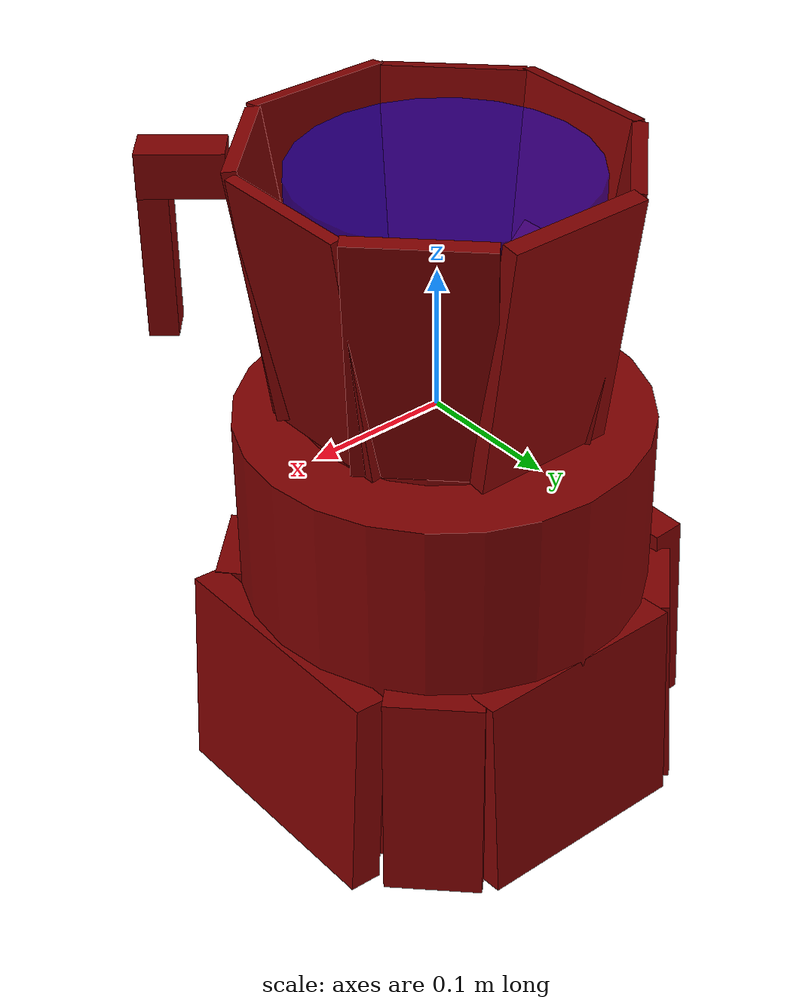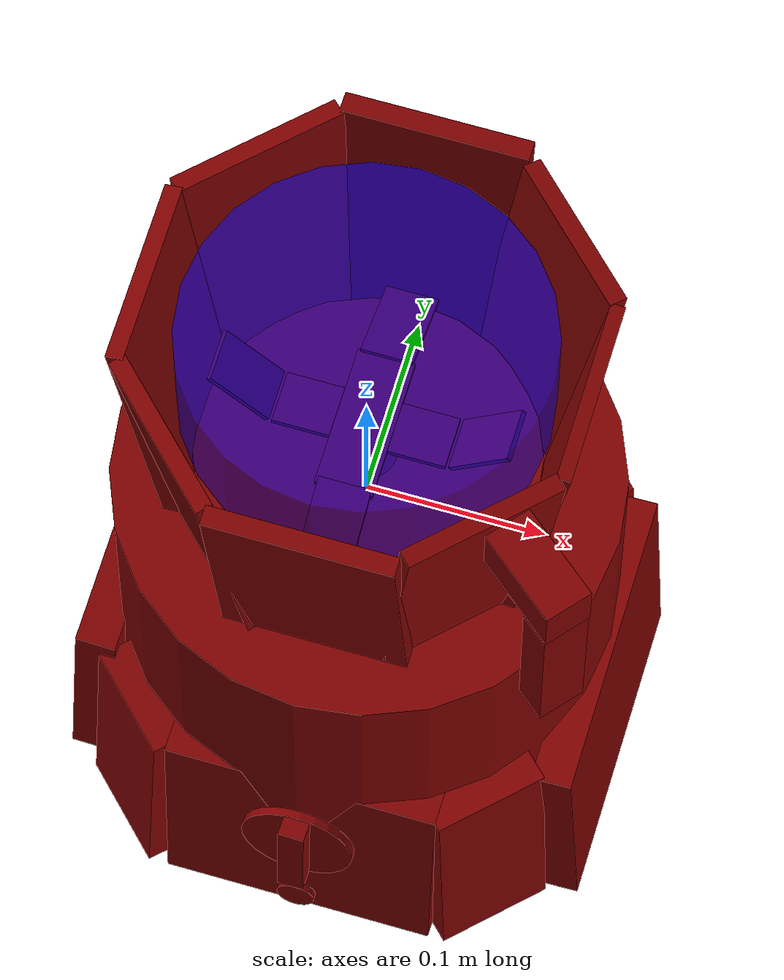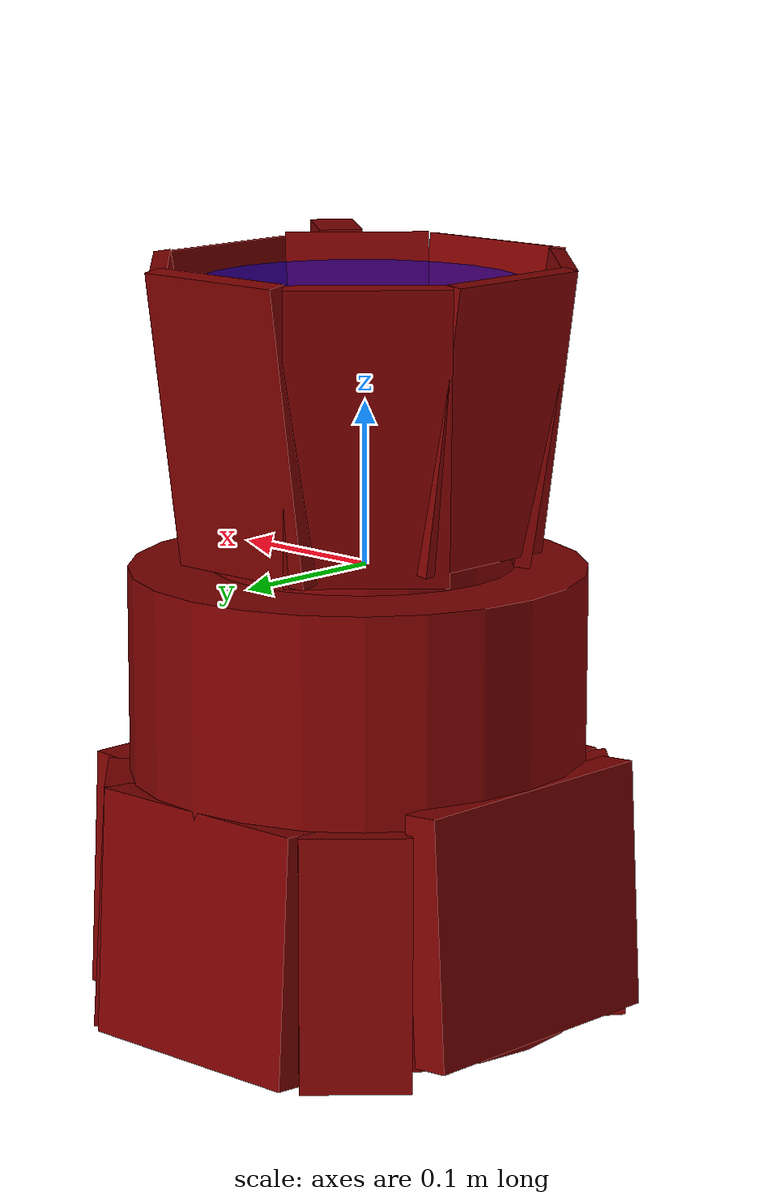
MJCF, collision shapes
<?xml version='1.0' encoding='UTF-8'?>
<mujoco model="model">
  <option timestep="0.002" gravity="0.0 0.0 -9.81"/>
  <compiler angle="radian"/>
  <asset>
    <mesh file="visuals/blade.obj" name="blade_vis"/>
    <mesh file="visuals/Body001.obj" name="Body001_vis"/>
    <mesh file="visuals/power_button.obj" name="power_button_vis"/>
    <mesh file="visuals/pitcher.obj" name="pitcher_vis"/>
    <mesh file="visuals/pitcher_main.obj" name="pitcher_main_vis"/>
    <mesh file="visuals/knob_speed.obj" name="knob_speed_vis"/>
    <texture file="visuals/T_BC001.png" name="Body001_material" type="2d"/>
    <material name="Body001_material" rgba="1 1 1 1.0" texture="Body001_material" shininess="0.4472135901451111" specular="2"/>
    <texture file="visuals/T_BC001.png" name="power_button_material" type="2d"/>
    <material name="power_button_material" rgba="1 1 1 1.0" texture="power_button_material" shininess="0.4472135901451111" specular="2"/>
    <texture file="visuals/T_BC001.png" name="pitcher_material" type="2d"/>
    <material name="pitcher_material" rgba="1 1 1 1.0" texture="pitcher_material" shininess="0.4472135901451111" specular="2"/>
    <texture file="visuals/T_BC001.png" name="blade_material" type="2d"/>
    <material name="blade_material" rgba="1 1 1 1.0" texture="blade_material" shininess="0.4472135901451111" specular="4"/>
    <texture file="visuals/T_BC001.png" name="pitcher_main_material" type="2d"/>
    <material name="pitcher_main_material" rgba="1 1 1 0.800000011920929" texture="pitcher_main_material" shininess="0.6880392730236053" specular="0.33333333333333337"/>
    <texture file="visuals/T_BC001.png" name="knob_speed_material" type="2d"/>
    <material name="knob_speed_material" rgba="1 1 1 1.0" texture="knob_speed_material" shininess="0.4472135901451111" specular="2"/>
  </asset>
  <default>
    <default class="visual">
      <geom conaffinity="0" contype="0" group="1" type="mesh"/>
    </default>
    <default class="collision">
      <geom group="0" rgba="0.5 0 0 0.5" density="1.0" solref="0.004 1" solimp="0.998 0.998 0.001"/>
    </default>
    <default class="spawn">
      <geom group="0" rgba="1 1 1 0.5" contype="0" conaffinity="0"/>
      <site group="0" rgba="1 1 1 0.5"/>
    </default>
    <default class="region">
      <geom group="1" conaffinity="0" contype="0" rgba="0 1 0 0" mass="0"/>
    </default>
  </default>
  <worldbody>
    <body>
      <body name="object">
        <geom mesh="Body001_vis" type="mesh" solimp="0.998 0.998 0.001" solref="0.001 1" friction="0.95 0.3 0.1" class="visual" material="Body001_material"/>
        <geom type="box" pos="-0.13592041 0.00416990 -0.19115232" size="0.011498981155455112 0.08904076367616653 0.07649284601211548" quat="0.9995970129966736 0.0 0.028387272730469704 0.0" class="collision"/>
        <geom type="cylinder" pos="-0.00066953 0.00646827 -0.13779943" size="0.14031340181827545 0.13831281661987305" quat="1.0 0.0 0.0 0.0" class="collision"/>
        <geom type="box" pos="0.13594456 0.00218360 -0.20372824" size="0.011498981155455112 0.08964601904153824 0.07649284601211548" quat="0.9995970129966736 0.0 -0.028387274593114853 0.0" class="collision"/>
        <geom type="box" pos="-0.00023109 0.13935284 -0.20372824" size="0.011498981155455112 0.07770014554262161 0.07649284601211548" quat="0.706821858882904 0.020072845742106438 -0.020072847604751587 0.7068217992782593" class="collision"/>
        <geom type="box" pos="0.09919563 0.11513875 -0.20402126" size="0.011498980224132538 0.03311116248369217 0.07649284601211548" quat="0.9235072135925293 0.010863340459764004 -0.026226429268717766 0.38252919912338257" class="collision"/>
        <geom type="box" pos="-0.10141344 0.11513874 -0.20402126" size="0.011498981155455112 0.03311115875840187 0.07649284601211548" quat="0.9235072135925293 0.010863344185054302 0.026226438581943512 -0.3825291395187378" class="collision"/>
        <geom type="box" pos="-0.10141344 -0.10372262 -0.20402126" size="0.011498981155455112 0.03311115875840187 0.07649284601211548" quat="0.9235072135925293 -0.0108633479103446 0.026226449757814407 0.3825291693210602" class="collision"/>
        <geom type="box" pos="0.09919562 -0.10372262 -0.20402126" size="0.011498981155455112 0.03311115875840187 0.07649284601211548" quat="0.9235072135925293 -0.010863343253731728 -0.026226434856653214 -0.3825291395187378" class="collision"/>
        <geom type="box" pos="-0.00023109 -0.12329688 -0.20378314" size="0.01053176075220108 0.07770014554262161 0.07649284601211548" quat="0.706821858882904 -0.020072845742106438 -0.020072847604751587 -0.7068217992782593" class="collision"/>
        <body name="power_button">
          <joint axis="0.0 0.9966602325439453 -0.08166057616472244" pos="0.00150807 -0.14566042 -0.24573395" limited="true" name="power_button_joint" range="0.0 0.001" type="slide" damping="1" frictionloss="1" armature=".01" stiffness="0.05" springref="-0.5"/>
          <geom mesh="power_button_vis" type="mesh" solimp="0.998 0.998 0.001" solref="0.001 1" friction="0.95 0.3 0.1" class="visual" material="power_button_material"/>
          <geom class="collision" type="cylinder" pos="0.00170298 -0.14624300 -0.24569818" size="0.010810940526425838 0.001899766270071268" quat="0.6749454736709595 -0.7377176880836487 0.005227867979556322 0.013924829661846161" name="power_button_main"/>
        </body>
        <body name="pitcher">
          <geom mesh="pitcher_vis" type="mesh" solimp="0.998 0.998 0.001" solref="0.001 1" friction="0.95 0.3 0.1" class="visual" material="pitcher_material"/>
          <geom type="cylinder" pos="-0.00007492 0.00280522 0.01773963" size="0.09389330446720123 0.016140157356858253" quat="1.0 0.0 0.0 0.0" class="collision"/>
          <geom class="collision" type="box" pos="0.11953454 -0.09948118 0.17314580" size="0.013613344170153141 0.02776089869439602 0.015190458856523037" quat="0.9058365821838379 0.0 0.0 0.4236273169517517" name="pitcher_handle_1"/>
          <geom class="collision" type="box" pos="0.13307938 -0.11145782 0.10917147" size="0.013502799905836582 0.009573325514793396 0.04846155270934105" quat="0.9058365821838379 0.0 0.0 0.4236273169517517" name="pitcher_handle_0"/>
          <geom type="cylinder" pos="-0.00102258 0.00505354 0.04985800" size="0.01608540304005146 0.015532627701759338" quat="1.0 0.0 0.0 0.0" class="collision"/>
          <body name="blade">
            <geom mesh="blade_vis" type="mesh" solimp="0.998 0.998 0.001" solref="0.001 1" friction="0.95 0.3 0.1" class="visual" material="blade_material"/>
            <geom type="box" pos="-0.00189308 0.00328441 0.07147215" size="0.015887247398495674 0.040357667952775955 0.0015504435868933797" quat="1.0 0.0 0.0 0.0" class="collision"/>
            <geom type="box" pos="-0.03375625 0.00516930 0.07147215" size="0.015887247398495674 0.014575560577213764 0.0015504435868933797" quat="1.0 0.0 0.0 0.0" class="collision"/>
            <geom type="box" pos="0.02996101 0.00516930 0.07147215" size="0.015887247398495674 0.014575560577213764 0.0015504435868933797" quat="1.0 0.0 0.0 0.0" class="collision"/>
            <geom type="box" pos="0.06445124 0.00516930 0.08742443" size="0.022117655724287033 0.014575560577213764 0.0015504439361393452" quat="0.9253676533699036 0.0 -0.37907081842422485 0.0" class="collision"/>
            <geom type="box" pos="-0.06792761 0.00516930 0.08742443" size="0.022117655724287033 0.014575560577213764 0.0015504439361393452" quat="4.008005873856746e-07 -0.9253676533699036 1.641853515366165e-07 0.37907081842422485" class="collision"/>
            <geom type="box" pos="-0.00173819 0.06714567 0.06342065" size="0.026381054893136024 0.014575560577213764 0.001550444052554667" quat="0.13120178878307343 0.6948279738426208 0.6948282718658447 -0.13120168447494507" class="collision"/>
            <geom type="box" pos="-0.00173819 -0.05776433 0.06351814" size="0.026113703846931458 0.014575560577213764 0.001550444052554667" quat="0.6948281526565552 0.13120175898075104 -0.13120178878307343 0.6948280930519104" class="collision"/>
          </body>
          <body name="pitcher_main">
            <geom class="region" type="cylinder" size="0.09999999403953552 0.0342894047498703" pos="-0.00166719 0.00557232 0.13953891" rgba="0 0 1 0.5" name="reg_int"/>
            <geom mesh="pitcher_main_vis" type="mesh" solimp="0.998 0.998 0.001" solref="0.001 1" friction="0.95 0.3 0.1" class="visual" material="pitcher_main_material"/>
            <geom type="box" pos="0.00082975 0.11225362 0.09796815" size="0.05125673860311508 0.006122444290667772 0.08999137580394745" quat="0.9973172545433044 -0.07320006936788559 0.0 0.0" class="collision"/>
            <geom type="box" pos="0.10576703 0.00173349 0.09742537" size="0.051528241485357285 0.0040107835084199905 0.08897125720977783" quat="0.7052098512649536 -0.0517602264881134 0.051760219037532806 -0.7052097916603088" class="collision"/>
            <geom type="box" pos="0.00082975 -0.10763947 0.09948440" size="0.05125673860311508 0.005388589575886726 0.08828059583902359" quat="7.52953610572149e-08 -5.526434421199156e-09 0.07320006936788559 -0.9973172545433044" class="collision"/>
            <geom type="box" pos="-0.10705413 0.00173347 0.10076386" size="0.051528241485357285 0.00485691474750638 0.08673109114170074" quat="0.7052098512649536 -0.0517602264881134 -0.0517602264881134 0.7052097916603088" class="collision"/>
            <geom type="box" pos="0.07684596 0.07774969 0.09845117" size="0.045730192214250565 0.005176766309887171 0.08872608095407486" quat="0.9214010238647461 -0.06762798875570297 0.028012456372380257 -0.38165685534477234" class="collision"/>
            <geom type="box" pos="-0.07620352 0.07876674 0.09698983" size="0.048428039997816086 0.005164290312677622 0.09014152735471725" quat="0.9214010238647461 -0.06762799620628357 -0.028012439608573914 0.38165685534477234" class="collision"/>
            <geom type="box" pos="-0.07507589 -0.07417214 0.09696825" size="0.04781375452876091 0.004935937002301216 0.09029550850391388" quat="0.38165679574012756 -0.028012432157993317 -0.06762800365686417 0.9214010238647461" class="collision"/>
            <geom type="box" pos="0.07701180 -0.07444855 0.10008390" size="0.04515534266829491 0.0049200886860489845 0.08869536966085434" quat="0.38165679574012756 -0.028012439608573914 0.06762800365686417 -0.9214010238647461" class="collision"/>
          </body>
        </body>
        <body name="knob_speed">
          <joint axis="0.0 0.995547354221344 -0.0942634716629982" pos="0.00197975 -0.14517417 -0.17814225" limited="true" name="knob_speed_joint" range="0.0 3.9269908169872414" type="hinge" damping="0.05" armature="0.001"/>
          <geom mesh="knob_speed_vis" type="mesh" solimp="0.998 0.998 0.001" solref="0.001 1" friction="0.95 0.3 0.1" class="visual" material="knob_speed_material"/>
         <geom class="collision" type="box" pos="0.00169428 -0.14873738 -0.17785837" size="0.00748627120628953 0.005762665998190641 0.030705107375979424" quat="0.9989962577819824 -0.04259018227458 -0.004050231073051691 -0.013270189054310322" name="knob_speed_main" density="0.001"/>
          <geom type="cylinder" pos="0.00164957 -0.14020852 -0.17891090" size="0.032203298062086105 0.002435933565720916" quat="0.7291671633720398 0.6755023002624512 -0.07591302692890167 0.07905163615942001" class="collision" density="0.001"/>
        </body>
        <geom class="region" name="reg_main" type="box" pos="-4.999999997368221e-09 0.005268090000000003 0.0" size="0.152660455 0.15285335 0.27435709"/>
      </body>
      <site rgba="0 1 0 0" size="0.005" pos="0.01592821 -0.01083621 0.2017383" name="anchor_site"/>
    </body>
  </worldbody>
  <actuator>
    <motor name="power_button_joint_actuator" joint="power_button_joint" gear="0.5"/>
    <motor name="knob_speed_joint_actuator" joint="knob_speed_joint" gear="10"/>
  </actuator>
</mujoco>
